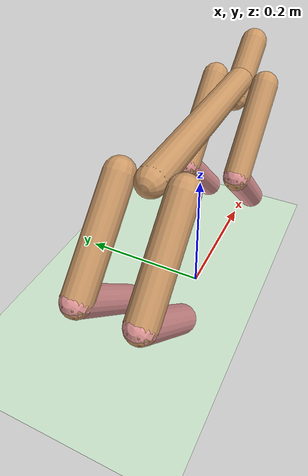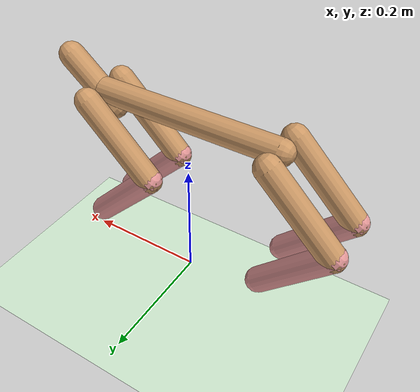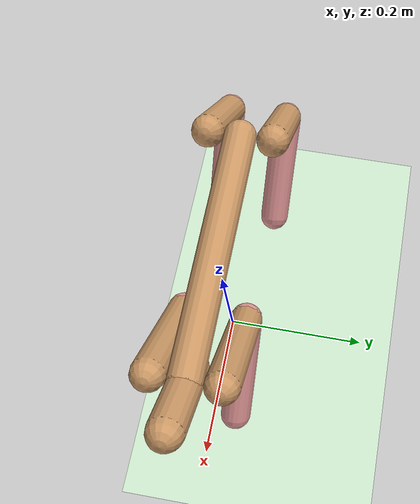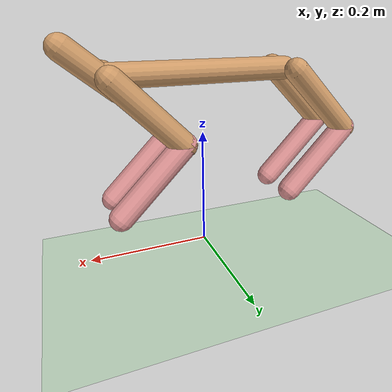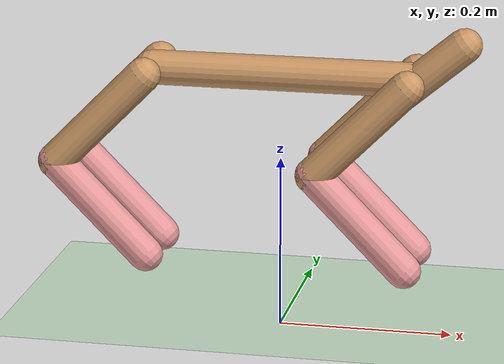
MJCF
<?xml version="1.0" encoding="UTF-8"?>
<mujoco model="cheetah">
    <compiler angle="radian" coordinate="local" inertiafromgeom="true" settotalmass="4.5"/>

    <default>
        <!-- Base properties for all joints -->
        <joint limited="true" frictionloss="0.2"/>

        <!-- Different classes for different joint types -->
        <default class="front_hip">
            <joint armature=".015" damping="6" stiffness="15"/>
        </default>
        <default class="front_knee">
            <joint armature=".01" damping="4" stiffness="10"/>
        </default>
        <default class="back_hip">
            <joint armature=".02" damping="7" stiffness="18"/>
        </default>
        <default class="back_knee">
            <joint armature=".012" damping="4.5" stiffness="12"/>
        </default>

        <geom conaffinity="0" condim="3" contype="1" friction="1.5 .1 .1" rgba="0.8 0.6 .4 1" solimp="0.0 0.8 0.01" solref="0.02 1"/>
        <motor ctrllimited="true" ctrlrange="-20 20"/>
    </default>

    <size nstack="300000" nuser_geom="1"/>
    <option gravity="0 0 -9.81" timestep="0.01"/>

    <asset>
        <texture builtin="gradient" height="100" rgb1="1 1 1" rgb2="0 0 0" type="skybox" width="100"/>
        <texture builtin="flat" height="1278" mark="cross" markrgb="1 1 1" name="texgeom" random="0.01" rgb1="0.8 0.6 0.4" rgb2="0.8 0.6 0.4" type="cube" width="127"/>
        <texture builtin="checker" height="100" name="texplane" rgb1="0 0 0" rgb2="0.8 0.8 0.8" type="2d" width="100"/>
        <material name="MatPlane" reflectance="0.5" shininess="1" specular="1" texrepeat="60 60" texture="texplane"/>
        <material name="geom" texture="texgeom" texuniform="true"/>
    </asset>

    <worldbody>
        <light cutoff="100" diffuse="1 1 1" dir="-0 0 -1.3" directional="true" exponent="1" pos="0 0 1.3" specular=".1 .1 .1"/>
        <geom conaffinity="1" condim="3" material="MatPlane" name="floor" pos="0 0 0" rgba="0.8 0.9 0.8 1" size="40 40 40" type="plane"/>

        <body name="torso" pos="0 0 .3">
            <camera name="track" mode="trackcom" pos="0 -3 0.3" xyaxes="1 0 0 0 0 1"/>
            <joint armature="0" axis="1 0 0" damping="0" limited="false" name="rootx" pos="0 0 0" stiffness="0" type="slide"/>
            <joint armature="0" axis="0 0 1" damping="0" limited="false" name="rootz" pos="0 0 0" stiffness="0" type="slide"/>
            <joint armature="0" axis="0 1 0" damping="0" limited="false" name="rooty" pos="0 0 0" stiffness="0" type="hinge"/>
            <geom fromto="-.15 0 0 .15 0 0" name="torso" size="0.02" type="capsule"/>
            <geom axisangle="0 1 0 .87" name="head" pos="0.17 0 0.01" size="0.02 0.05" type="capsule"/>

            <!-- Front Left Leg -->
            <body name="lfthigh" pos=".15 0.04 0">
                <joint axis="0 1 0" name="lfthigh" pos="0 0 0" range="-1 .7" type="hinge" class="front_hip"/>
                <geom axisangle="0 1 0 .78" name="lfthigh" pos="-.053025 0 -.053025" size="0.02 .075" type="capsule"/>
                <body name="lfshin" pos="-.10605 0 -.10605">
                    <joint axis="0 1 0" name="lfshin" pos="0 0 0" range="-1.2 .87" type="hinge" class="front_knee"/>
                    <geom axisangle="0 1 0 -.78" name="lfshin" pos=".053025 0 -.053025" rgba="0.9 0.6 0.6 1" size="0.02 .075" type="capsule"/>
                </body>
            </body>

            <!-- Front Right Leg -->
            <body name="rfthigh" pos=".15 -0.04 0">
                <joint axis="0 1 0" name="rfthigh" pos="0 0 0" range="-1 .7" type="hinge" class="front_hip"/>
                <geom axisangle="0 1 0 .78" name="rfthigh" pos="-.053025 0 -.053025" size="0.02 .075" type="capsule"/>
                <body name="rfshin" pos="-.10605 0 -.10605">
                    <joint axis="0 1 0" name="rfshin" pos="0 0 0" range="-1.2 .87" type="hinge" class="front_knee"/>
                    <geom axisangle="0 1 0 -.78" name="rfshin" pos=".053025 0 -.053025" rgba="0.9 0.6 0.6 1" size="0.02 .075" type="capsule"/>
                </body>
            </body>

            <!-- Back Left Leg -->
            <body name="lbthigh" pos="-.15 0.04 0">
                <joint axis="0 1 0" name="lbthigh" pos="0 0 0" range="-1 .7" type="hinge" class="back_hip"/>
                <geom axisangle="0 1 0 .78" name="lbthigh" pos="-.053025 0 -.053025" size="0.02 .075" type="capsule"/>
                <body name="lbshin" pos="-.10605 0 -.10605">
                    <joint axis="0 1 0" name="lbshin" pos="0 0 0" range="-1.2 .87" type="hinge" class="back_knee"/>
                    <geom axisangle="0 1 0 -.78" name="lbshin" pos=".053025 0 -.053025" rgba="0.9 0.6 0.6 1" size="0.02 .075" type="capsule"/>
                </body>
            </body>

            <!-- Back Right Leg -->
            <body name="rbthigh" pos="-.15 -0.04 0">
                <joint axis="0 1 0" name="rbthigh" pos="0 0 0" range="-1 .7" type="hinge" class="back_hip"/>
                <geom axisangle="0 1 0 .78" name="rbthigh" pos="-.053025 0 -.053025" size="0.02 .075" type="capsule"/>
                <body name="rbshin" pos="-.10605 0 -.10605">
                    <joint axis="0 1 0" name="rbshin" pos="0 0 0" range="-1.2 .87" type="hinge" class="back_knee"/>
                    <geom axisangle="0 1 0 -.78" name="rbshin" pos=".053025 0 -.053025" rgba="0.9 0.6 0.6 1" size="0.02 .075" type="capsule"/>
                </body>
            </body>
        </body>
    </worldbody>

    <actuator>
        <!-- Front legs (lighter actuation) -->
        <motor gear="1.0" joint="lfthigh" name="lfthigh"/>
        <motor gear="0.8" joint="lfshin" name="lfshin"/>
        <motor gear="1.0" joint="rfthigh" name="rfthigh"/>
        <motor gear="0.8" joint="rfshin" name="rfshin"/>

        <!-- Back legs (stronger actuation) -->
        <motor gear="1.2" joint="lbthigh" name="lbthigh"/>
        <motor gear="1.0" joint="lbshin" name="lbshin"/>
        <motor gear="1.2" joint="rbthigh" name="rbthigh"/>
        <motor gear="1.0" joint="rbshin" name="rbshin"/>
    </actuator>
</mujoco>
